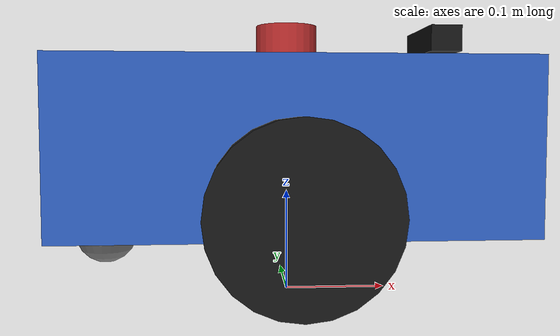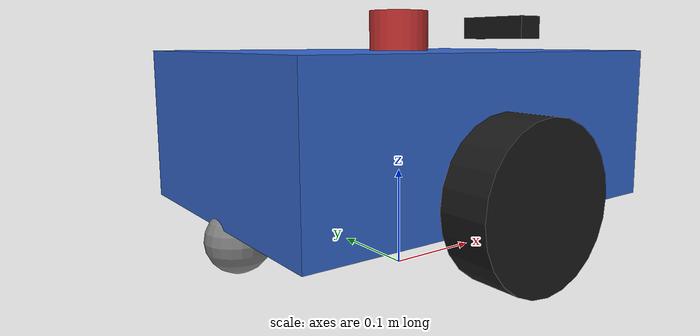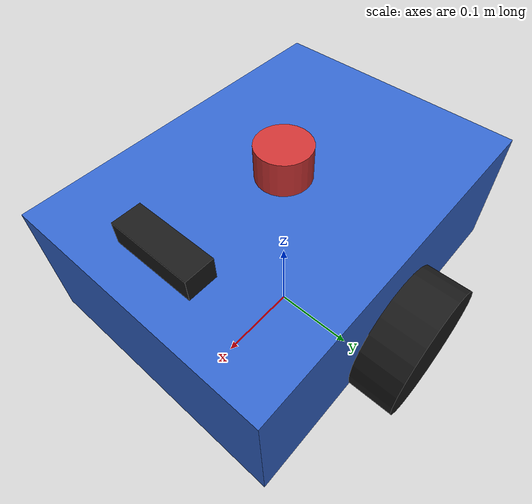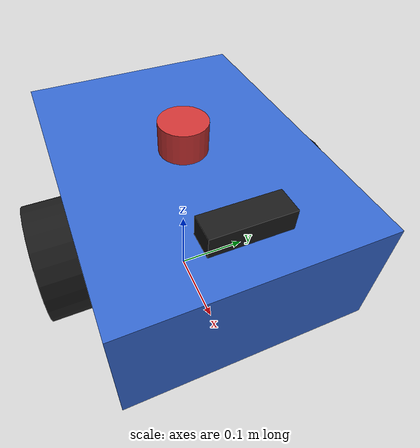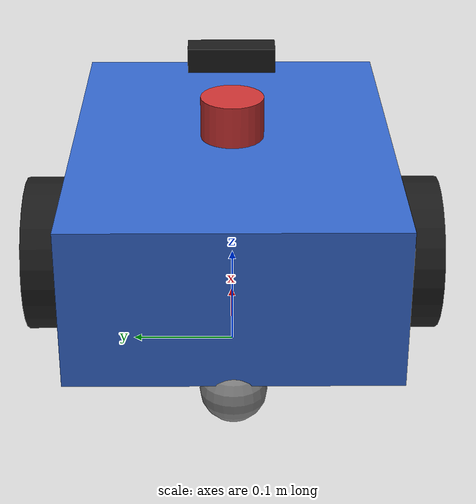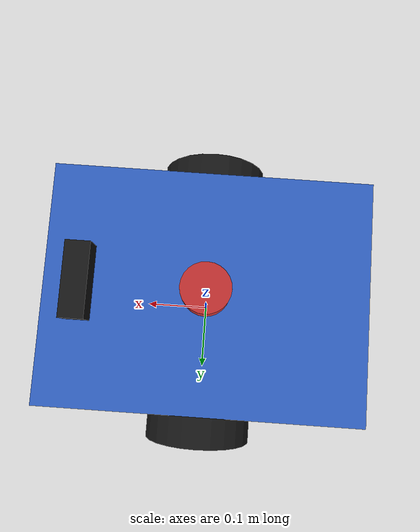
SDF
<?xml version="1.0"?>
<sdf version="1.9">
  <model name="demo_robot">
    <pose>0 0 0.15 0 0 0</pose>

    <!-- ===================== CHASSIS ===================== -->
    <link name="base_link">
      <inertial>
        <mass>5.0</mass>
        <inertia>
          <ixx>0.0508</ixx>
          <ixy>0</ixy>
          <ixz>0</ixz>
          <iyy>0.0958</iyy>
          <iyz>0</iyz>
          <izz>0.1383</izz>
        </inertia>
      </inertial>
      <visual name="chassis_visual">
        <geometry>
          <box><size>0.4 0.3 0.15</size></box>
        </geometry>
        <material>
          <ambient>0.2 0.4 0.8 1</ambient>
          <diffuse>0.2 0.4 0.8 1</diffuse>
        </material>
      </visual>
      <collision name="chassis_collision">
        <geometry>
          <box><size>0.4 0.3 0.15</size></box>
        </geometry>
      </collision>
    </link>

    <!-- ===================== LEFT WHEEL ===================== -->
    <link name="left_wheel">
      <pose>0 0.175 -0.05 1.5708 0 0</pose>
      <inertial>
        <mass>0.5</mass>
        <inertia>
          <ixx>0.000703</ixx>
          <ixy>0</ixy>
          <ixz>0</ixz>
          <iyy>0.000703</iyy>
          <iyz>0</iyz>
          <izz>0.001406</izz>
        </inertia>
      </inertial>
      <visual name="left_wheel_visual">
        <geometry>
          <cylinder><radius>0.075</radius><length>0.05</length></cylinder>
        </geometry>
        <material>
          <ambient>0.1 0.1 0.1 1</ambient>
          <diffuse>0.1 0.1 0.1 1</diffuse>
        </material>
      </visual>
      <collision name="left_wheel_collision">
        <geometry>
          <cylinder><radius>0.075</radius><length>0.05</length></cylinder>
        </geometry>
        <surface>
          <friction>
            <ode><mu>1.0</mu><mu2>1.0</mu2></ode>
          </friction>
        </surface>
      </collision>
    </link>

    <joint name="left_wheel_joint" type="revolute">
      <parent>base_link</parent>
      <child>left_wheel</child>
      <axis>
        <xyz>0 0 1</xyz>
        <limit><effort>10</effort><velocity>10</velocity></limit>
      </axis>
    </joint>

    <!-- ===================== RIGHT WHEEL ===================== -->
    <link name="right_wheel">
      <pose>0 -0.175 -0.05 1.5708 0 0</pose>
      <inertial>
        <mass>0.5</mass>
        <inertia>
          <ixx>0.000703</ixx>
          <ixy>0</ixy>
          <ixz>0</ixz>
          <iyy>0.000703</iyy>
          <iyz>0</iyz>
          <izz>0.001406</izz>
        </inertia>
      </inertial>
      <visual name="right_wheel_visual">
        <geometry>
          <cylinder><radius>0.075</radius><length>0.05</length></cylinder>
        </geometry>
        <material>
          <ambient>0.1 0.1 0.1 1</ambient>
          <diffuse>0.1 0.1 0.1 1</diffuse>
        </material>
      </visual>
      <collision name="right_wheel_collision">
        <geometry>
          <cylinder><radius>0.075</radius><length>0.05</length></cylinder>
        </geometry>
        <surface>
          <friction>
            <ode><mu>1.0</mu><mu2>1.0</mu2></ode>
          </friction>
        </surface>
      </collision>
    </link>

    <joint name="right_wheel_joint" type="revolute">
      <parent>base_link</parent>
      <child>right_wheel</child>
      <axis>
        <xyz>0 0 1</xyz>
        <limit><effort>10</effort><velocity>10</velocity></limit>
      </axis>
    </joint>

    <!-- ===================== CASTER ===================== -->
    <link name="caster">
      <pose>-0.18 0 -0.09 0 0 0</pose>
      <inertial>
        <mass>0.1</mass>
        <inertia>
          <ixx>0.000036</ixx>
          <ixy>0</ixy>
          <ixz>0</ixz>
          <iyy>0.000036</iyy>
          <iyz>0</iyz>
          <izz>0.000036</izz>
        </inertia>
      </inertial>
      <visual name="caster_visual">
        <geometry>
          <sphere><radius>0.03</radius></sphere>
        </geometry>
        <material>
          <ambient>0.5 0.5 0.5 1</ambient>
          <diffuse>0.5 0.5 0.5 1</diffuse>
        </material>
      </visual>
      <collision name="caster_collision">
        <geometry>
          <sphere><radius>0.03</radius></sphere>
        </geometry>
        <surface>
          <friction>
            <!-- frictionless caster -->
            <ode><mu>0</mu><mu2>0</mu2></ode>
          </friction>
        </surface>
      </collision>
    </link>

    <joint name="caster_joint" type="fixed">
      <parent>base_link</parent>
      <child>caster</child>
    </joint>

    <!-- ===================== LIDAR LINK ===================== -->
    <link name="lidar_link">
      <pose>0 0 0.095 0 0 0</pose>
      <inertial>
        <mass>0.1</mass>
        <inertia>
          <ixx>0.0000045</ixx>
          <ixy>0</ixy>
          <ixz>0</ixz>
          <iyy>0.0000045</iyy>
          <iyz>0</iyz>
          <izz>0.0000045</izz>
        </inertia>
      </inertial>
      <visual name="lidar_visual">
        <geometry>
          <cylinder><radius>0.03</radius><length>0.04</length></cylinder>
        </geometry>
        <material>
          <ambient>0.8 0.2 0.2 1</ambient>
          <diffuse>0.8 0.2 0.2 1</diffuse>
        </material>
      </visual>
      <collision name="lidar_collision">
        <geometry>
          <cylinder><radius>0.03</radius><length>0.04</length></cylinder>
        </geometry>
      </collision>

      <sensor name="lidar" type="gpu_lidar">
        <gz_frame_id>lidar_link</gz_frame_id>
        <pose>0 0 0.02 0 0 0</pose>
        <ray>
          <scan>
            <horizontal>
              <samples>720</samples>
              <resolution>1</resolution>
              <min_angle>-2.356195</min_angle>
              <max_angle>2.356195</max_angle>
            </horizontal>
          </scan>
          <range>
            <min>0.1</min>
            <max>12.0</max>
            <resolution>0.01</resolution>
          </range>
          <noise>
            <type>gaussian</type>
            <mean>0.0</mean>
            <stddev>0.005</stddev>
          </noise>
        </ray>
        <always_on>1</always_on>
        <update_rate>10</update_rate>
        <visualize>true</visualize>
      </sensor>
    </link>

    <joint name="lidar_joint" type="fixed">
      <parent>base_link</parent>
      <child>lidar_link</child>
    </joint>

    <!-- ===================== CAMERA LINK ===================== -->
    <link name="camera_link">
      <pose>0.15 0 0.10 0 0 0</pose>
      <inertial>
        <mass>0.05</mass>
        <inertia>
          <ixx>0.0000020</ixx>
          <ixy>0</ixy>
          <ixz>0</ixz>
          <iyy>0.0000020</iyy>
          <iyz>0</iyz>
          <izz>0.0000020</izz>
        </inertia>
      </inertial>
      <visual name="camera_visual">
        <geometry>
          <box><size>0.03 0.09 0.025</size></box>
        </geometry>
        <material>
          <ambient>0.1 0.1 0.1 1</ambient>
          <diffuse>0.1 0.1 0.1 1</diffuse>
        </material>
      </visual>
      <collision name="camera_collision">
        <geometry>
          <box><size>0.03 0.09 0.025</size></box>
        </geometry>
      </collision>

      <sensor name="rgbd_camera" type="rgbd_camera">
        <gz_frame_id>camera_link</gz_frame_id>
        <pose>0 0 0 0 0 0</pose>
        <camera>
          <horizontal_fov>1.047</horizontal_fov>
          <image>
            <width>640</width>
            <height>480</height>
            <format>R8G8B8</format>
          </image>
          <clip>
            <near>0.1</near>
            <far>12.0</far>
          </clip>
        </camera>
        <always_on>1</always_on>
        <update_rate>10</update_rate>
        <visualize>true</visualize>
      </sensor>
    </link>

    <joint name="camera_joint" type="fixed">
      <parent>base_link</parent>
      <child>camera_link</child>
    </joint>

    <!-- ===================== PLUGINS ===================== -->

    <plugin filename="gz-sim-diff-drive-system"
            name="gz::sim::systems::DiffDrive">
      <left_joint>left_wheel_joint</left_joint>
      <right_joint>right_wheel_joint</right_joint>
      <wheel_separation>0.35</wheel_separation>
      <wheel_radius>0.075</wheel_radius>
      <topic>cmd_vel</topic>
      <odom_topic>odom</odom_topic>
      <tf_topic>tf</tf_topic>
      <frame_id>odom</frame_id>
      <child_frame_id>base_link</child_frame_id>
      <min_velocity>-2</min_velocity>
      <max_velocity>2</max_velocity>
      <min_acceleration>-1</min_acceleration>
      <max_acceleration>1</max_acceleration>
    </plugin>

    <plugin filename="gz-sim-odometry-publisher-system"
            name="gz::sim::systems::OdometryPublisher">
      <odom_frame>odom</odom_frame>
      <robot_base_frame>base_link</robot_base_frame>
    </plugin>

  </model>
</sdf>
